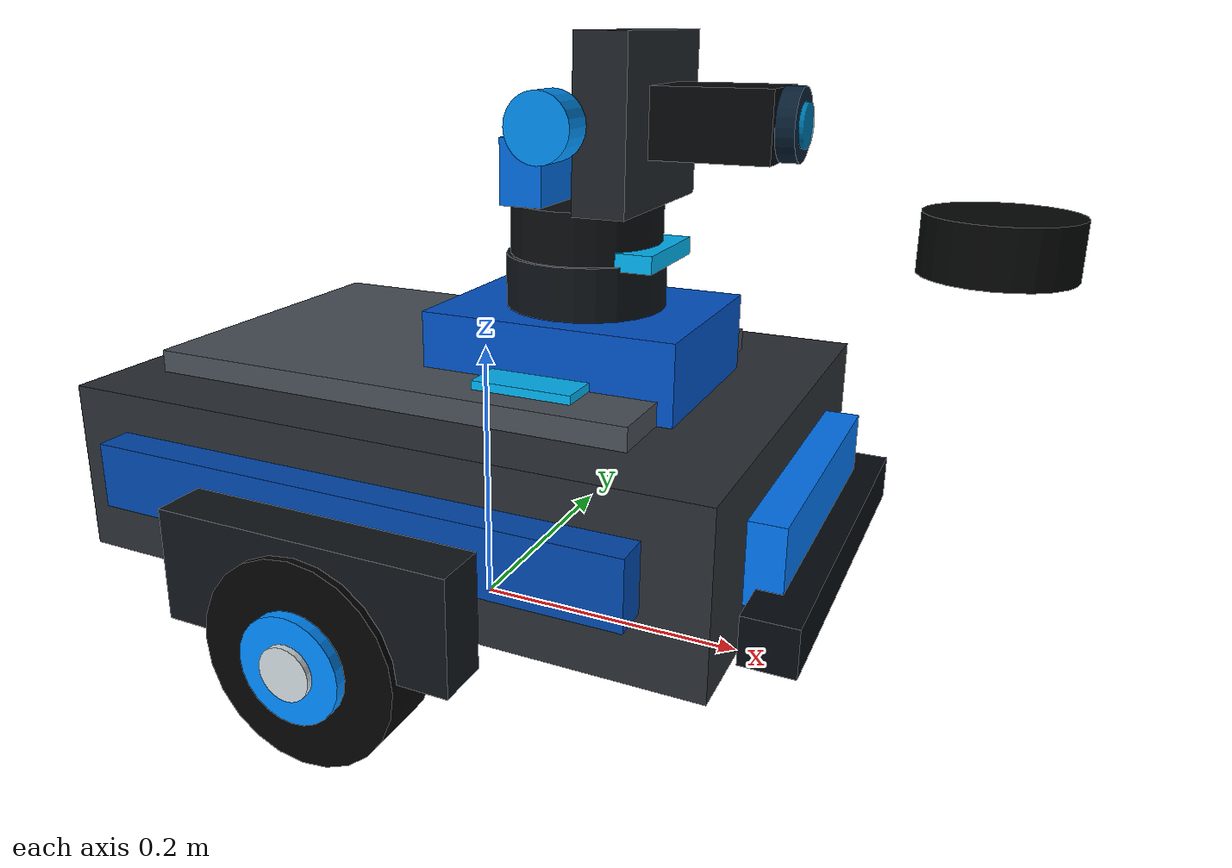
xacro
<?xml version="1.0"?>
<robot xmlns:xacro="http://www.ros.org/wiki/xacro" name="ground_gimbal_robot">
  <xacro:arg name="gazebo_static_gimbal" default="false"/>

  <xacro:property name="base_length" value="0.46"/>
  <xacro:property name="base_width" value="0.34"/>
  <xacro:property name="base_height" value="0.12"/>
  <xacro:property name="base_mass" value="5.0"/>

  <xacro:property name="wheel_radius" value="0.068"/>
  <xacro:property name="wheel_width" value="0.045"/>
  <xacro:property name="wheel_separation" value="0.43"/>
  <xacro:property name="wheel_mass" value="0.45"/>

  <xacro:property name="caster_radius" value="0.035"/>
  <xacro:property name="caster_mass" value="0.15"/>

  <xacro:property name="mount_length" value="0.18"/>
  <xacro:property name="mount_width" value="0.14"/>
  <xacro:property name="mount_height" value="0.055"/>
  <xacro:property name="mount_mass" value="0.6"/>

  <xacro:property name="pan_base_radius" value="0.052"/>
  <xacro:property name="pan_base_height" value="0.035"/>
  <xacro:property name="pan_base_mass" value="0.35"/>
  <xacro:property name="tilt_frame_width" value="0.13"/>
  <xacro:property name="tilt_frame_height" value="0.11"/>
  <xacro:property name="tilt_frame_depth" value="0.035"/>
  <xacro:property name="tilt_frame_mass" value="0.4"/>
  <xacro:property name="camera_length" value="0.085"/>
  <xacro:property name="camera_width" value="0.055"/>
  <xacro:property name="camera_height" value="0.045"/>
  <xacro:property name="camera_mass" value="0.22"/>
  <xacro:property name="camera_sensor_offset" value="${camera_length + 0.22}"/>
  <xacro:property name="camera_sensor_height_offset" value="0.10"/>

  <xacro:macro name="box_inertia" params="mass x y z">
    <inertial>
      <mass value="${mass}"/>
      <inertia
        ixx="${mass * (y*y + z*z) / 12.0}"
        ixy="0.0"
        ixz="0.0"
        iyy="${mass * (x*x + z*z) / 12.0}"
        iyz="0.0"
        izz="${mass * (x*x + y*y) / 12.0}"/>
    </inertial>
  </xacro:macro>

  <xacro:macro name="cylinder_inertia" params="mass radius length axis">
    <inertial>
      <mass value="${mass}"/>
      <xacro:if value="${axis == 'y'}">
        <inertia
          ixx="${mass * (3.0 * radius * radius + length * length) / 12.0}"
          ixy="0.0"
          ixz="0.0"
          iyy="${mass * radius * radius / 2.0}"
          iyz="0.0"
          izz="${mass * (3.0 * radius * radius + length * length) / 12.0}"/>
      </xacro:if>
      <xacro:unless value="${axis == 'y'}">
        <inertia
          ixx="${mass * (3.0 * radius * radius + length * length) / 12.0}"
          ixy="0.0"
          ixz="0.0"
          iyy="${mass * (3.0 * radius * radius + length * length) / 12.0}"
          iyz="0.0"
          izz="${mass * radius * radius / 2.0}"/>
      </xacro:unless>
    </inertial>
  </xacro:macro>

  <link name="base_footprint"/>

  <joint name="base_footprint_joint" type="fixed">
    <parent link="base_footprint"/>
    <child link="base_link"/>
    <origin xyz="0 0 ${wheel_radius}" rpy="0 0 0"/>
  </joint>

  <link name="base_link">
    <visual>
      <origin xyz="0 0 ${base_height / 2.0}" rpy="0 0 0"/>
      <geometry>
        <box size="${base_length} ${base_width} ${base_height}"/>
      </geometry>
      <material name="graphite_body">
        <color rgba="0.16 0.18 0.20 1.0"/>
      </material>
    </visual>
    <visual>
      <origin xyz="-0.02 0 ${base_height + 0.008}" rpy="0 0 0"/>
      <geometry>
        <box size="${base_length * 0.78} ${base_width * 0.70} 0.016"/>
      </geometry>
      <material name="top_deck">
        <color rgba="0.28 0.31 0.34 1.0"/>
      </material>
    </visual>
    <visual>
      <origin xyz="${base_length / 2.0 + 0.012} 0 ${base_height * 0.48}" rpy="0 0 0"/>
      <geometry>
        <box size="0.024 ${base_width * 0.62} 0.055"/>
      </geometry>
      <material name="front_accent_blue">
        <color rgba="0.0 0.46 0.95 1.0"/>
      </material>
    </visual>
    <visual>
      <origin xyz="${base_length / 2.0 + 0.025} 0 ${base_height * 0.22}" rpy="0 0 0"/>
      <geometry>
        <box size="0.035 ${base_width * 0.82} 0.032"/>
      </geometry>
      <material name="front_bumper">
        <color rgba="0.02 0.04 0.06 1.0"/>
      </material>
    </visual>
    <visual>
      <origin xyz="${-base_length / 2.0 - 0.014} 0 ${base_height * 0.22}" rpy="0 0 0"/>
      <geometry>
        <box size="0.028 ${base_width * 0.70} 0.03"/>
      </geometry>
      <material name="rear_bumper">
        <color rgba="0.02 0.04 0.06 1.0"/>
      </material>
    </visual>
    <visual>
      <origin xyz="0 ${base_width / 2.0 + 0.012} ${base_height * 0.58}" rpy="0 0 0"/>
      <geometry>
        <box size="${base_length * 0.82} 0.024 0.045"/>
      </geometry>
      <material name="side_rail_blue">
        <color rgba="0.0 0.28 0.68 1.0"/>
      </material>
    </visual>
    <visual>
      <origin xyz="0 ${-base_width / 2.0 - 0.012} ${base_height * 0.58}" rpy="0 0 0"/>
      <geometry>
        <box size="${base_length * 0.82} 0.024 0.045"/>
      </geometry>
      <material name="side_rail_blue"/>
    </visual>
    <visual>
      <origin xyz="${base_length * 0.17} 0 ${base_height + 0.019}" rpy="0 0 0"/>
      <geometry>
        <box size="0.07 ${base_width * 0.58} 0.006"/>
      </geometry>
      <material name="sensor_stripe">
        <color rgba="0.0 0.70 0.95 1.0"/>
      </material>
    </visual>
    <visual>
      <origin xyz="0 ${wheel_separation / 2.0} ${base_height * 0.34}" rpy="0 0 0"/>
      <geometry>
        <box size="${base_length * 0.44} 0.035 0.075"/>
      </geometry>
      <material name="left_wheel_fender">
        <color rgba="0.06 0.08 0.10 1.0"/>
      </material>
    </visual>
    <visual>
      <origin xyz="0 ${-wheel_separation / 2.0} ${base_height * 0.34}" rpy="0 0 0"/>
      <geometry>
        <box size="${base_length * 0.44} 0.035 0.075"/>
      </geometry>
      <material name="right_wheel_fender">
        <color rgba="0.06 0.08 0.10 1.0"/>
      </material>
    </visual>
    <collision>
      <origin xyz="0 0 ${base_height / 2.0}" rpy="0 0 0"/>
      <geometry>
        <box size="${base_length} ${base_width} ${base_height}"/>
      </geometry>
    </collision>
    <xacro:box_inertia mass="${base_mass}" x="${base_length}" y="${base_width}" z="${base_height}"/>
  </link>

  <link name="gimbal_mount_link">
    <visual>
      <origin xyz="0 0 ${mount_height / 2.0}" rpy="0 0 0"/>
      <geometry>
        <box size="${mount_length} ${mount_width} ${mount_height}"/>
      </geometry>
      <material name="mount_blue">
        <color rgba="0.0 0.32 0.78 1.0"/>
      </material>
    </visual>
    <visual>
      <origin xyz="0 0 ${mount_height + 0.018}" rpy="0 0 0"/>
      <geometry>
        <cylinder radius="0.055" length="0.036"/>
      </geometry>
      <material name="mount_puck">
        <color rgba="0.05 0.07 0.09 1.0"/>
      </material>
    </visual>
    <visual>
      <origin xyz="0.047 0 ${mount_height + 0.039}" rpy="0 0 0"/>
      <geometry>
        <box size="0.028 0.075 0.012"/>
      </geometry>
      <material name="mount_alignment_mark">
        <color rgba="0.0 0.70 0.95 1.0"/>
      </material>
    </visual>
    <collision>
      <origin xyz="0 0 ${mount_height / 2.0}" rpy="0 0 0"/>
      <geometry>
        <box size="${mount_length} ${mount_width} ${mount_height}"/>
      </geometry>
    </collision>
    <xacro:box_inertia mass="${mount_mass}" x="${mount_length}" y="${mount_width}" z="${mount_height}"/>
  </link>

  <joint name="gimbal_mount_joint" type="fixed">
    <parent link="base_link"/>
    <child link="gimbal_mount_link"/>
    <origin xyz="0.08 0 ${base_height}" rpy="0 0 0"/>
  </joint>
  <link name="lidar_link">
    <visual>
      <origin xyz="0 0 0.018" rpy="0 0 0"/>
      <geometry>
        <cylinder radius="0.045" length="0.036"/>
      </geometry>
      <material name="lidar_black">
        <color rgba="0.015 0.018 0.02 1.0"/>
      </material>
    </visual>
    <collision>
      <origin xyz="0 0 0.018" rpy="0 0 0"/>
      <geometry>
        <cylinder radius="0.045" length="0.036"/>
      </geometry>
    </collision>
    <xacro:cylinder_inertia mass="0.12" radius="0.045" length="0.036" axis="z"/>
  </link>

  <joint name="lidar_joint" type="fixed">
    <parent link="base_link"/>
    <child link="lidar_link"/>
    <origin xyz="0.34 0 ${base_height + 0.10}" rpy="0 0 0"/>
  </joint>

  <link name="gimbal_pan_link">
    <visual>
      <origin xyz="0 0 ${pan_base_height / 2.0}" rpy="0 0 0"/>
      <geometry>
        <cylinder radius="${pan_base_radius}" length="${pan_base_height}"/>
      </geometry>
      <material name="gimbal_pan_dark">
        <color rgba="0.04 0.05 0.06 1.0"/>
      </material>
    </visual>
    <visual>
      <origin xyz="0.028 0 ${pan_base_height + 0.022}" rpy="0 0 0"/>
      <geometry>
        <box size="0.03 0.09 0.044"/>
      </geometry>
      <material name="gimbal_yoke_blue">
        <color rgba="0.0 0.42 0.88 1.0"/>
      </material>
    </visual>
    <visual>
      <origin xyz="-0.028 0 ${pan_base_height + 0.022}" rpy="0 0 0"/>
      <geometry>
        <box size="0.03 0.09 0.044"/>
      </geometry>
      <material name="gimbal_yoke_blue"/>
    </visual>
    <collision>
      <origin xyz="0 0 ${pan_base_height / 2.0}" rpy="0 0 0"/>
      <geometry>
        <cylinder radius="${pan_base_radius}" length="${pan_base_height}"/>
      </geometry>
    </collision>
    <xacro:cylinder_inertia mass="${pan_base_mass}" radius="${pan_base_radius}" length="${pan_base_height}" axis="z"/>
  </link>

  <xacro:if value="$(arg gazebo_static_gimbal)">
    <joint name="gimbal_pan_joint" type="fixed">
      <parent link="gimbal_mount_link"/>
      <child link="gimbal_pan_link"/>
      <origin xyz="0 0 ${mount_height + 0.036}" rpy="0 0 0"/>
    </joint>
  </xacro:if>

  <xacro:unless value="$(arg gazebo_static_gimbal)">
    <joint name="gimbal_pan_joint" type="continuous">
      <parent link="gimbal_mount_link"/>
      <child link="gimbal_pan_link"/>
      <origin xyz="0 0 ${mount_height + 0.036}" rpy="0 0 0"/>
      <axis xyz="0 0 1"/>
      <limit effort="4.0" velocity="2.5"/>
      <dynamics damping="0.15" friction="0.02"/>
    </joint>
  </xacro:unless>

  <link name="gimbal_tilt_link">
    <visual>
      <origin xyz="0.035 0 0" rpy="0 0 0"/>
      <geometry>
        <box size="${tilt_frame_depth} ${tilt_frame_width} ${tilt_frame_height}"/>
      </geometry>
      <material name="gimbal_tilt_frame">
        <color rgba="0.12 0.14 0.16 1.0"/>
      </material>
    </visual>
    <visual>
      <origin xyz="0.005 ${tilt_frame_width / 2.0 + 0.012} 0" rpy="${pi / 2.0} 0 0"/>
      <geometry>
        <cylinder radius="0.022" length="0.024"/>
      </geometry>
      <material name="tilt_motor_left">
        <color rgba="0.0 0.56 0.95 1.0"/>
      </material>
    </visual>
    <visual>
      <origin xyz="0.005 ${-tilt_frame_width / 2.0 - 0.012} 0" rpy="${pi / 2.0} 0 0"/>
      <geometry>
        <cylinder radius="0.022" length="0.024"/>
      </geometry>
      <material name="tilt_motor_right">
        <color rgba="0.0 0.56 0.95 1.0"/>
      </material>
    </visual>
    <collision>
      <origin xyz="0.035 0 0" rpy="0 0 0"/>
      <geometry>
        <box size="${tilt_frame_depth} ${tilt_frame_width} ${tilt_frame_height}"/>
      </geometry>
    </collision>
    <xacro:box_inertia mass="${tilt_frame_mass}" x="${tilt_frame_depth}" y="${tilt_frame_width}" z="${tilt_frame_height}"/>
  </link>

  <xacro:if value="$(arg gazebo_static_gimbal)">
    <joint name="gimbal_tilt_joint" type="fixed">
      <parent link="gimbal_pan_link"/>
      <child link="gimbal_tilt_link"/>
      <origin xyz="0 0 ${pan_base_height + 0.055}" rpy="0 0 0"/>
    </joint>
  </xacro:if>

  <xacro:unless value="$(arg gazebo_static_gimbal)">
    <joint name="gimbal_tilt_joint" type="revolute">
      <parent link="gimbal_pan_link"/>
      <child link="gimbal_tilt_link"/>
      <origin xyz="0 0 ${pan_base_height + 0.055}" rpy="0 0 0"/>
      <axis xyz="0 1 0"/>
      <limit lower="-0.85" upper="0.85" effort="3.0" velocity="2.0"/>
      <dynamics damping="0.12" friction="0.02"/>
    </joint>
  </xacro:unless>

  <link name="camera_link">
    <visual>
      <origin xyz="${camera_length / 2.0} 0 0" rpy="0 0 0"/>
      <geometry>
        <box size="${camera_length} ${camera_width} ${camera_height}"/>
      </geometry>
      <material name="camera_body">
        <color rgba="0.02 0.025 0.03 1.0"/>
      </material>
    </visual>
    <visual>
      <origin xyz="${camera_length + 0.006} 0 0" rpy="0 ${pi / 2.0} 0"/>
      <geometry>
        <cylinder radius="0.023" length="0.012"/>
      </geometry>
      <material name="camera_lens">
        <color rgba="0.03 0.12 0.20 1.0"/>
      </material>
    </visual>
    <visual>
      <origin xyz="${camera_length + 0.013} 0 0" rpy="0 ${pi / 2.0} 0"/>
      <geometry>
        <cylinder radius="0.014" length="0.004"/>
      </geometry>
      <material name="camera_glass">
        <color rgba="0.0 0.62 0.88 0.75"/>
      </material>
    </visual>
    <collision>
      <origin xyz="${camera_length / 2.0} 0 0" rpy="0 0 0"/>
      <geometry>
        <box size="${camera_length} ${camera_width} ${camera_height}"/>
      </geometry>
    </collision>
    <xacro:box_inertia mass="${camera_mass}" x="${camera_length}" y="${camera_width}" z="${camera_height}"/>
  </link>

  <joint name="camera_joint" type="fixed">
    <parent link="gimbal_tilt_link"/>
    <child link="camera_link"/>
    <origin xyz="0.045 0 0" rpy="0 0 0"/>
  </joint>

  <link name="camera_optical_frame"/>

  <joint name="camera_optical_joint" type="fixed">
    <parent link="camera_link"/>
    <child link="camera_optical_frame"/>
    <origin xyz="${camera_sensor_offset} 0 ${camera_sensor_height_offset}" rpy="${-pi / 2.0} 0 ${-pi / 2.0}"/>
  </joint>
<xacro:macro name="drive_wheel" params="prefix y">
    <link name="${prefix}_wheel_link">
      <visual>
        <origin xyz="0 0 0" rpy="${pi / 2.0} 0 0"/>
        <geometry>
          <cylinder radius="${wheel_radius}" length="${wheel_width}"/>
        </geometry>
        <material name="wheel_dark">
          <color rgba="0.01 0.01 0.012 1.0"/>
        </material>
      </visual>
      <visual>
        <origin xyz="0 0.026 0" rpy="${pi / 2.0} 0 0"/>
        <geometry>
          <cylinder radius="${wheel_radius * 0.52}" length="0.008"/>
        </geometry>
        <material name="wheel_hub_blue">
          <color rgba="0.0 0.55 1.0 1.0"/>
        </material>
      </visual>
      <visual>
        <origin xyz="0 0.031 0" rpy="${pi / 2.0} 0 0"/>
        <geometry>
          <cylinder radius="${wheel_radius * 0.26}" length="0.006"/>
        </geometry>
        <material name="wheel_hub_silver">
          <color rgba="0.82 0.86 0.88 1.0"/>
        </material>
      </visual>
      <visual>
        <origin xyz="0 -0.026 0" rpy="${pi / 2.0} 0 0"/>
        <geometry>
          <cylinder radius="${wheel_radius * 0.52}" length="0.008"/>
        </geometry>
        <material name="wheel_hub_blue"/>
      </visual>
      <visual>
        <origin xyz="0 -0.031 0" rpy="${pi / 2.0} 0 0"/>
        <geometry>
          <cylinder radius="${wheel_radius * 0.26}" length="0.006"/>
        </geometry>
        <material name="wheel_hub_silver"/>
      </visual>
      <collision>
        <origin xyz="0 0 0" rpy="${pi / 2.0} 0 0"/>
        <geometry>
          <cylinder radius="${wheel_radius}" length="${wheel_width}"/>
        </geometry>
      </collision>
      <xacro:cylinder_inertia mass="${wheel_mass}" radius="${wheel_radius}" length="${wheel_width}" axis="y"/>
    </link>

    <joint name="${prefix}_wheel_joint" type="continuous">
      <parent link="base_link"/>
      <child link="${prefix}_wheel_link"/>
      <origin xyz="0 ${y} 0" rpy="0 0 0"/>
      <axis xyz="0 1 0"/>
      <dynamics damping="0.1" friction="0.1"/>
    </joint>
  </xacro:macro>

  <xacro:drive_wheel prefix="left" y="${wheel_separation / 2.0}"/>
  <xacro:drive_wheel prefix="right" y="${-wheel_separation / 2.0}"/>

  <link name="front_caster_link">
    <visual>
      <geometry>
        <sphere radius="${caster_radius}"/>
      </geometry>
      <material name="caster_gray">
        <color rgba="0.55 0.58 0.60 1.0"/>
      </material>
    </visual>
    <collision>
      <geometry>
        <sphere radius="${caster_radius}"/>
      </geometry>
    </collision>
    <inertial>
      <mass value="${caster_mass}"/>
      <inertia
        ixx="${2.0 * caster_mass * caster_radius * caster_radius / 5.0}"
        ixy="0.0"
        ixz="0.0"
        iyy="${2.0 * caster_mass * caster_radius * caster_radius / 5.0}"
        iyz="0.0"
        izz="${2.0 * caster_mass * caster_radius * caster_radius / 5.0}"/>
    </inertial>
  </link>

  <joint name="front_caster_joint" type="fixed">
    <parent link="base_link"/>
    <child link="front_caster_link"/>
    <origin xyz="0.17 0 ${caster_radius - wheel_radius}" rpy="0 0 0"/>
  </joint>

  <link name="rear_caster_link">
    <visual>
      <geometry>
        <sphere radius="${caster_radius}"/>
      </geometry>
      <material name="caster_gray"/>
    </visual>
    <collision>
      <geometry>
        <sphere radius="${caster_radius}"/>
      </geometry>
    </collision>
    <inertial>
      <mass value="${caster_mass}"/>
      <inertia
        ixx="${2.0 * caster_mass * caster_radius * caster_radius / 5.0}"
        ixy="0.0"
        ixz="0.0"
        iyy="${2.0 * caster_mass * caster_radius * caster_radius / 5.0}"
        iyz="0.0"
        izz="${2.0 * caster_mass * caster_radius * caster_radius / 5.0}"/>
    </inertial>
  </link>

  <joint name="rear_caster_joint" type="fixed">
    <parent link="base_link"/>
    <child link="rear_caster_link"/>
    <origin xyz="-0.17 0 ${caster_radius - wheel_radius}" rpy="0 0 0"/>
  </joint>

  <gazebo reference="front_caster_link">
    <material>Gazebo/Grey</material>
    <mu1>0.02</mu1>
    <mu2>0.02</mu2>
  </gazebo>

  <gazebo reference="rear_caster_link">
    <material>Gazebo/Grey</material>
    <mu1>0.02</mu1>
    <mu2>0.02</mu2>
  </gazebo>
  <gazebo reference="base_link">
    <material>Gazebo/DarkGrey</material>
  </gazebo>

  <gazebo reference="gimbal_mount_link">
    <material>Gazebo/Blue</material>
  </gazebo>

  <gazebo reference="gimbal_pan_link">
    <material>Gazebo/DarkGrey</material>
    <gravity>false</gravity>
    <self_collide>false</self_collide>
  </gazebo>

  <gazebo reference="gimbal_tilt_link">
    <material>Gazebo/DarkGrey</material>
    <gravity>false</gravity>
    <self_collide>false</self_collide>
  </gazebo>

  <gazebo reference="camera_link">
    <material>Gazebo/Black</material>
    <gravity>false</gravity>
    <self_collide>false</self_collide>
    <sensor name="gimbal_camera" type="camera">
      <pose>${camera_sensor_offset} 0 ${camera_sensor_height_offset} 0 0 0</pose>
      <always_on>true</always_on>
      <update_rate>30</update_rate>
      <camera>
        <horizontal_fov>1.3962634</horizontal_fov>
        <image>
          <width>640</width>
          <height>480</height>
          <format>R8G8B8</format>
        </image>
        <clip>
          <near>0.25</near>
          <far>50.0</far>
        </clip>
      </camera>
      <plugin name="gimbal_camera_controller" filename="libgazebo_ros_camera.so">
        <ros>
          <namespace>/gimbal_camera</namespace>
        </ros>
        <camera_name>gimbal_camera</camera_name>
        <frame_name>camera_optical_frame</frame_name>
      </plugin>
    </sensor>
    <sensor name="gimbal_depth_camera" type="depth">
      <pose>${camera_sensor_offset} 0 ${camera_sensor_height_offset} 0 0 0</pose>
      <always_on>true</always_on>
      <update_rate>30</update_rate>
      <camera>
        <horizontal_fov>1.3962634</horizontal_fov>
        <image>
          <width>640</width>
          <height>480</height>
        </image>
        <clip>
          <near>0.25</near>
          <far>50.0</far>
        </clip>
      </camera>
      <plugin name="gimbal_depth_camera_controller" filename="libgazebo_ros_camera.so">
        <ros>
          <namespace>/gimbal_camera</namespace>
        </ros>
        <camera_name>gimbal_depth_camera</camera_name>
        <frame_name>camera_optical_frame</frame_name>
      </plugin>
    </sensor>
  </gazebo>

  <gazebo reference="lidar_link">
    <material>Gazebo/Black</material>
    <sensor name="front_lidar" type="ray">
      <pose>0 0 0.025 0 0 0</pose>
      <always_on>true</always_on>
      <visualize>true</visualize>
      <update_rate>10</update_rate>
      <ray>
        <scan>
          <horizontal>
            <samples>271</samples>
            <resolution>1</resolution>
            <min_angle>-2.35619</min_angle>
            <max_angle>2.35619</max_angle>
          </horizontal>
        </scan>
        <range>
          <min>0.22</min>
          <max>8.0</max>
          <resolution>0.01</resolution>
        </range>
        <noise>
          <type>gaussian</type>
          <mean>0.0</mean>
          <stddev>0.01</stddev>
        </noise>
      </ray>
      <plugin name="front_lidar_controller" filename="libgazebo_ros_ray_sensor.so">
        <ros>
          <namespace>/</namespace>
          <remapping>~/out:=scan</remapping>
        </ros>
        <output_type>sensor_msgs/LaserScan</output_type>
        <frame_name>lidar_link</frame_name>
      </plugin>
    </sensor>
  </gazebo>
  <gazebo reference="left_wheel_link">
    <material>Gazebo/Black</material>
    <mu1>1.0</mu1>
    <mu2>1.0</mu2>
  </gazebo>

  <gazebo reference="right_wheel_link">
    <material>Gazebo/Black</material>
    <mu1>1.0</mu1>
    <mu2>1.0</mu2>
  </gazebo>
<gazebo>
    <plugin name="ground_gimbal_diff_drive" filename="libgazebo_ros_diff_drive.so">
      <ros>
        <remapping>cmd_vel:=/cmd_vel</remapping>
        <remapping>odom:=/odom</remapping>
      </ros>
      <left_joint>left_wheel_joint</left_joint>
      <right_joint>right_wheel_joint</right_joint>
      <wheel_separation>${wheel_separation}</wheel_separation>
      <wheel_diameter>${2.0 * wheel_radius}</wheel_diameter>
      <max_wheel_torque>20.0</max_wheel_torque>
      <max_wheel_acceleration>4.0</max_wheel_acceleration>
      <command_topic>/cmd_vel</command_topic>
      <odometry_topic>/odom</odometry_topic>
      <odometry_frame>odom</odometry_frame>
      <robot_base_frame>base_footprint</robot_base_frame>
      <publish_odom>true</publish_odom>
      <publish_odom_tf>true</publish_odom_tf>
      <publish_wheel_tf>true</publish_wheel_tf>
      <update_rate>50</update_rate>
    </plugin>
  </gazebo>

  <ros2_control name="GazeboSystem" type="system">
    <hardware>
      <plugin>gazebo_ros2_control/GazeboSystem</plugin>
    </hardware>

    <joint name="gimbal_pan_joint">
      <command_interface name="position">
        <param name="min">-3.14159</param>
        <param name="max">3.14159</param>
      </command_interface>
      <state_interface name="position"/>
      <state_interface name="velocity"/>
    </joint>

    <joint name="gimbal_tilt_joint">
      <command_interface name="position">
        <param name="min">-0.85</param>
        <param name="max">0.85</param>
      </command_interface>
      <state_interface name="position"/>
      <state_interface name="velocity"/>
    </joint>
  </ros2_control>

  <gazebo>
    <plugin name="gazebo_ros2_control" filename="libgazebo_ros2_control.so">
      <parameters>$(find ground_gimbal_robot)/config/gimbal_controllers.yaml</parameters>
    </plugin>
  </gazebo>
</robot>
